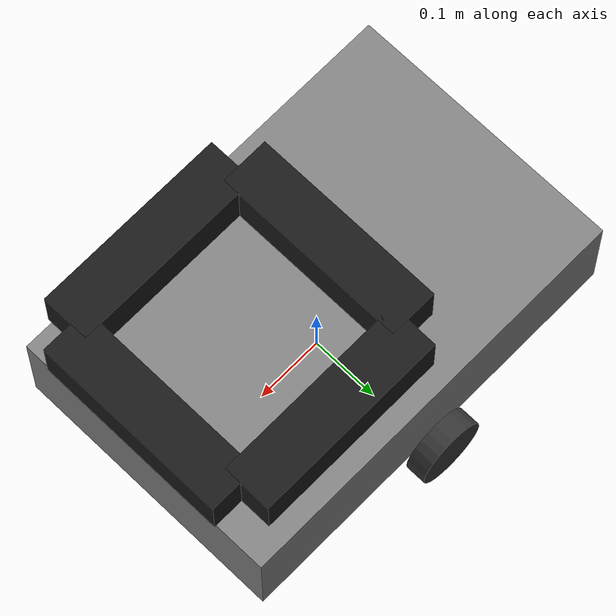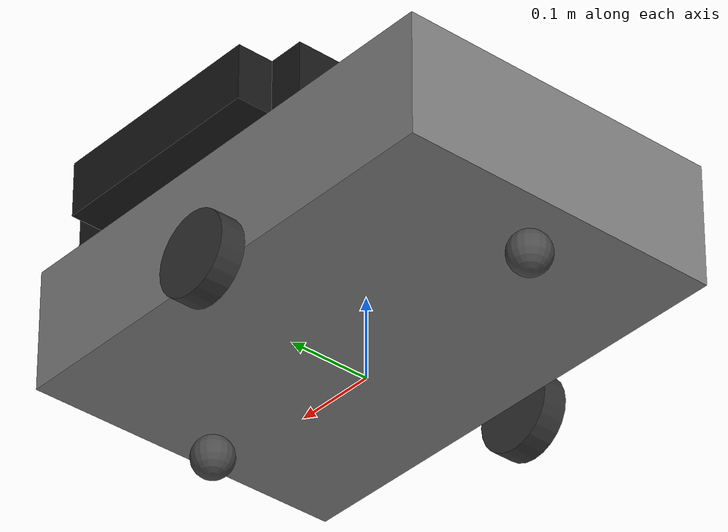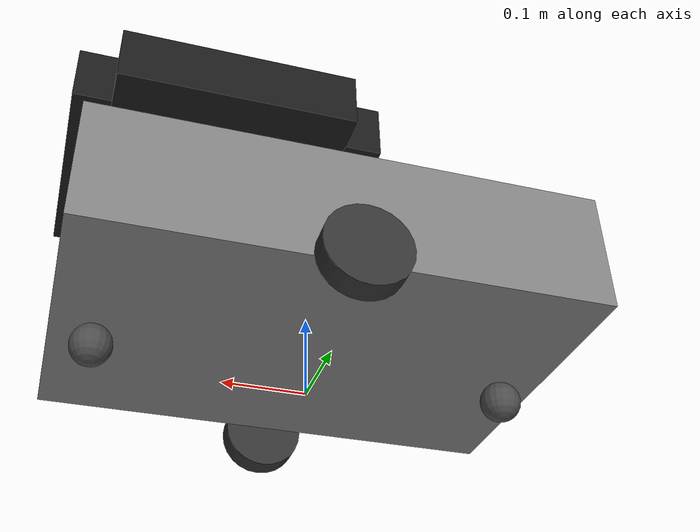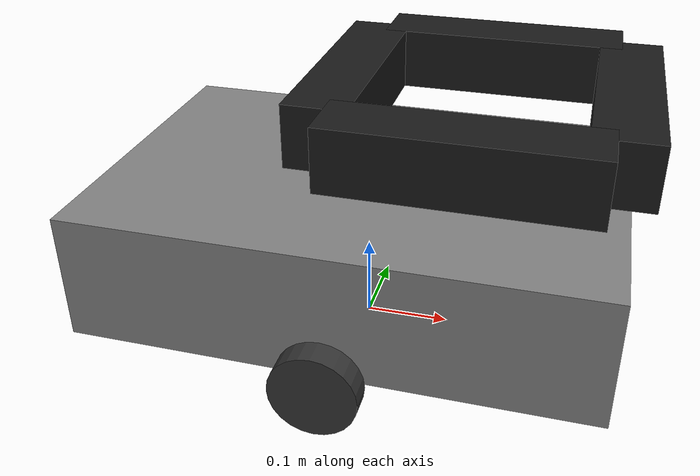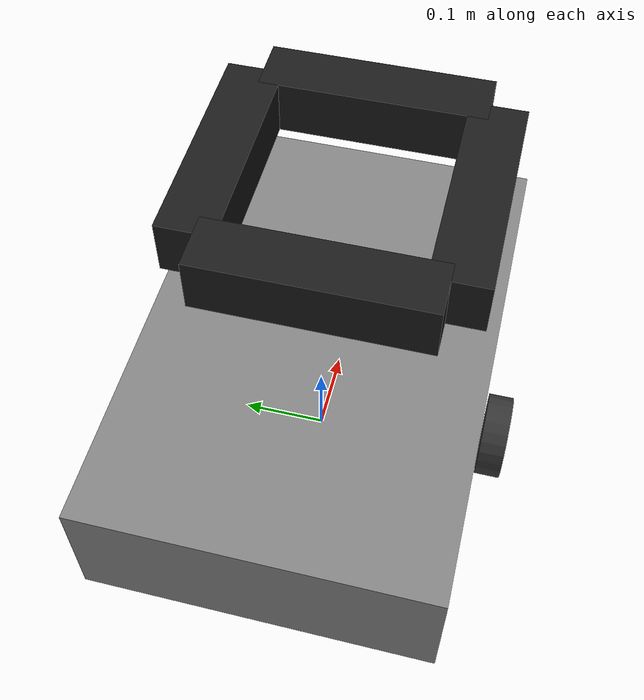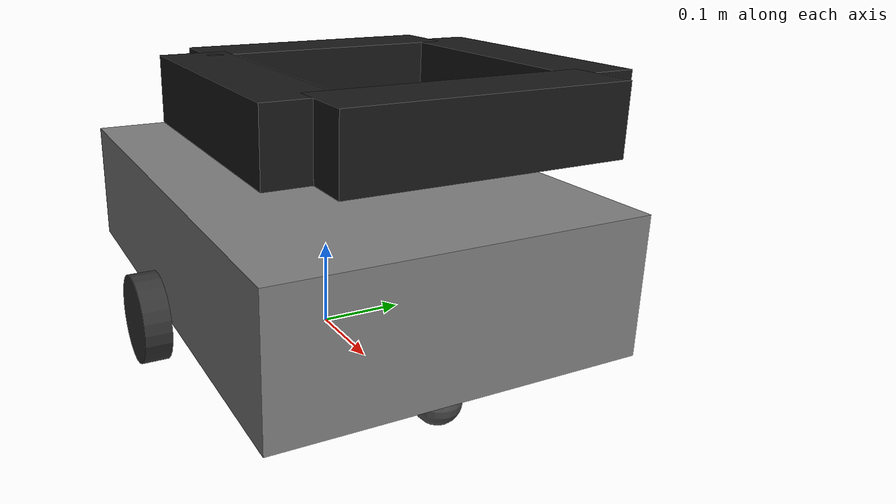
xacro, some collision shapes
<?xml version="1.0"?>
<robot xmlns:xacro="http://www.ros.org/wiki/xacro" name="agv">

  <!-- ===================== PROPERTIES ===================== -->
  <xacro:property name="base_length" value="0.60"/>
  <xacro:property name="base_width"  value="0.40"/>
  <xacro:property name="base_height" value="0.15"/>
  <xacro:property name="base_mass"   value="20.0"/>

  <xacro:property name="wheel_radius"     value="0.05"/>
  <xacro:property name="wheel_width"      value="0.03"/>
  <xacro:property name="wheel_mass"       value="1.0"/>
  <xacro:property name="wheel_separation" value="0.44"/>
  <xacro:property name="wheel_offset_x"   value="0.0"/>

  <xacro:property name="caster_radius" value="0.025"/>
  <xacro:property name="caster_mass"   value="0.3"/>

  <xacro:property name="camera_height" value="0.30"/>

  <!-- Kinect v1 specs -->
  <xacro:property name="kinect_hfov"      value="0.9948"/>
  <xacro:property name="kinect_width"     value="640"/>
  <xacro:property name="kinect_height"    value="480"/>
  <xacro:property name="kinect_near_clip" value="0.8"/>
  <xacro:property name="kinect_far_clip"  value="3.5"/>
  <xacro:property name="kinect_fps"       value="15"/>

  <!-- ==================== MACROS ========================= -->

  <!-- Inertia for a box -->
  <xacro:macro name="box_inertia" params="m x y z">
    <inertial>
      <mass value="${m}"/>
      <inertia ixx="${m*(y*y+z*z)/12}" ixy="0" ixz="0"
               iyy="${m*(x*x+z*z)/12}" iyz="0"
               izz="${m*(x*x+y*y)/12}"/>
    </inertial>
  </xacro:macro>

  <!-- Inertia for a cylinder -->
  <xacro:macro name="cylinder_inertia" params="m r h">
    <inertial>
      <mass value="${m}"/>
      <inertia ixx="${m*(3*r*r+h*h)/12}" ixy="0" ixz="0"
               iyy="${m*(3*r*r+h*h)/12}" iyz="0"
               izz="${m*r*r/2}"/>
    </inertial>
  </xacro:macro>

  <!-- Inertia for a sphere -->
  <xacro:macro name="sphere_inertia" params="m r">
    <inertial>
      <mass value="${m}"/>
      <inertia ixx="${2*m*r*r/5}" ixy="0" ixz="0"
               iyy="${2*m*r*r/5}" iyz="0"
               izz="${2*m*r*r/5}"/>
    </inertial>
  </xacro:macro>

  <!-- Drive wheel macro -->
  <xacro:macro name="drive_wheel" params="name y_offset">
    <link name="${name}_wheel_link">
      <visual>
        <geometry>
          <cylinder radius="${wheel_radius}" length="${wheel_width}"/>
        </geometry>
        <material name="dark_gray">
          <color rgba="0.2 0.2 0.2 1.0"/>
        </material>
      </visual>
      <collision>
        <geometry>
          <cylinder radius="${wheel_radius}" length="${wheel_width}"/>
        </geometry>
      </collision>
      <xacro:cylinder_inertia m="${wheel_mass}" r="${wheel_radius}" h="${wheel_width}"/>
    </link>
    <joint name="${name}_wheel_joint" type="continuous">
      <parent link="base_link"/>
      <child link="${name}_wheel_link"/>
      <origin xyz="${wheel_offset_x} ${y_offset} ${wheel_radius}" rpy="-1.5708 0 0"/>
      <axis xyz="0 0 1"/>
    </joint>
    <gazebo reference="${name}_wheel_link">
      <mu1>1.0</mu1>
      <mu2>1.0</mu2>
    </gazebo>
  </xacro:macro>

  <!-- Caster wheel macro -->
  <xacro:macro name="caster_wheel" params="name x_offset">
    <link name="${name}_caster_link">
      <visual>
        <geometry>
          <sphere radius="${caster_radius}"/>
        </geometry>
        <material name="caster_gray">
          <color rgba="0.3 0.3 0.3 1.0"/>
        </material>
      </visual>
      <collision>
        <geometry>
          <sphere radius="${caster_radius}"/>
        </geometry>
      </collision>
      <xacro:sphere_inertia m="${caster_mass}" r="${caster_radius}"/>
    </link>
    <joint name="${name}_caster_joint" type="fixed">
      <parent link="base_link"/>
      <child link="${name}_caster_link"/>
      <origin xyz="${x_offset} 0 ${caster_radius}" rpy="0 0 0"/>
    </joint>
    <gazebo reference="${name}_caster_link">
      <mu1>0.0</mu1>
      <mu2>0.0</mu2>
    </gazebo>
  </xacro:macro>

  <!-- Kinect depth camera macro -->
  <xacro:macro name="kinect_camera" params="name parent x y yaw">
    <link name="${name}_link">
      <visual>
        <geometry>
          <box size="0.07 0.28 0.07"/>
        </geometry>
        <material name="kinect_black">
          <color rgba="0.1 0.1 0.1 1.0"/>
        </material>
      </visual>
      <collision>
        <geometry>
          <box size="0.07 0.28 0.07"/>
        </geometry>
      </collision>
      <xacro:box_inertia m="0.5" x="0.07" y="0.28" z="0.07"/>
    </link>
    <joint name="${parent}_to_${name}" type="fixed">
      <parent link="${parent}"/>
      <child link="${name}_link"/>
      <origin xyz="${x} ${y} 0" rpy="0 0 ${yaw}"/>
    </joint>

    <!-- Depth frame -->
    <link name="${name}_depth_frame"/>
    <joint name="${name}_depth_joint" type="fixed">
      <parent link="${name}_link"/>
      <child link="${name}_depth_frame"/>
      <origin xyz="0 0 0" rpy="0 0 0"/>
    </joint>

    <!-- Depth optical frame -->
    <link name="${name}_depth_optical_frame"/>
    <joint name="${name}_depth_optical_joint" type="fixed">
      <parent link="${name}_depth_frame"/>
      <child link="${name}_depth_optical_frame"/>
      <origin xyz="0 0 0" rpy="-1.5708 0 -1.5708"/>
    </joint>

    <!-- RGB frame -->
    <link name="${name}_rgb_frame"/>
    <joint name="${name}_rgb_joint" type="fixed">
      <parent link="${name}_link"/>
      <child link="${name}_rgb_frame"/>
      <origin xyz="0 0 0" rpy="0 0 0"/>
    </joint>

    <!-- RGB optical frame -->
    <link name="${name}_rgb_optical_frame"/>
    <joint name="${name}_rgb_optical_joint" type="fixed">
      <parent link="${name}_rgb_frame"/>
      <child link="${name}_rgb_optical_frame"/>
      <origin xyz="0 0 0" rpy="-1.5708 0 -1.5708"/>
    </joint>

    <!-- Gazebo depth camera sensor -->
    <gazebo reference="${name}_link">
      <sensor name="${name}_depth" type="depth_camera">
        <always_on>true</always_on>
        <update_rate>${kinect_fps}</update_rate>
        <topic>/${name}/${name}/depth</topic>
        <gz_frame_id>${name}_depth_optical_frame</gz_frame_id>
        <camera>
          <horizontal_fov>${kinect_hfov}</horizontal_fov>
          <image>
            <width>${kinect_width}</width>
            <height>${kinect_height}</height>
            <format>R_FLOAT32</format>
          </image>
          <clip>
            <near>${kinect_near_clip}</near>
            <far>${kinect_far_clip}</far>
          </clip>
        </camera>
      </sensor>
      <sensor name="${name}_rgb" type="camera">
        <always_on>true</always_on>
        <update_rate>${kinect_fps}</update_rate>
        <topic>/${name}/${name}/rgb</topic>
        <gz_frame_id>${name}_rgb_optical_frame</gz_frame_id>
        <camera>
          <horizontal_fov>${kinect_hfov}</horizontal_fov>
          <image>
            <width>${kinect_width}</width>
            <height>${kinect_height}</height>
            <format>RGB_INT8</format>
          </image>
          <clip>
            <near>0.1</near>
            <far>10.0</far>
          </clip>
        </camera>
      </sensor>
    </gazebo>
  </xacro:macro>

  <!-- ==================== ROBOT BODY ===================== -->

  <!-- Base footprint (ground projection) -->
  <link name="base_footprint"/>

  <!-- Base Link -->
  <link name="base_link">
    <visual>
      <geometry>
        <mesh filename="package://robot_description/meshes/agv.stl" scale="1 1 1"/>
      </geometry>
      <material name="gray">
        <color rgba="0.5 0.5 0.5 1.0"/>
      </material>
      <origin xyz="0.13 0 0" rpy="0 0 0"/>
    </visual>
    <collision>
      <geometry>
        <box size="${base_length} ${base_width} ${base_height}"/>
      </geometry>
      <origin xyz="0 0 ${base_height/2 + wheel_radius}" rpy="0 0 0"/>
    </collision>
    <xacro:box_inertia m="${base_mass}" x="${base_length}" y="${base_width}" z="${base_height}"/>
  </link>

  <joint name="base_footprint_joint" type="fixed">
    <parent link="base_footprint"/>
    <child link="base_link"/>
    <origin xyz="0 0 0" rpy="0 0 0"/>
  </joint>

  <gazebo reference="base_link">
    <mu1>0.2</mu1>
    <mu2>0.2</mu2>
  </gazebo>

  <!-- ==================== WHEELS ========================= -->

  <xacro:drive_wheel name="left"  y_offset="${wheel_separation/2}"/>
  <xacro:drive_wheel name="right" y_offset="${-wheel_separation/2}"/>
  <xacro:caster_wheel name="front" x_offset="${base_length/2 - 0.05}"/>
  <xacro:caster_wheel name="back"  x_offset="${-base_length/2 + 0.05}"/>

  <!-- ==================== CAMERA MOUNT =================== -->

  <link name="camera_link"/>
  <joint name="base_to_camera" type="fixed">
    <parent link="base_link"/>
    <child link="camera_link"/>
    <origin xyz="0.13 0 ${camera_height}" rpy="0 0 0"/>
  </joint>

  <!-- ==================== 4 KINECT CAMERAS =============== -->

  <!-- Kinect 1 - Front (facing 0 deg) -->
  <xacro:kinect_camera name="kinect1" parent="camera_link"
                        x="0.15" y="0" yaw="0"/>

  <!-- Kinect 2 - Back (facing 180 deg) -->
  <xacro:kinect_camera name="kinect2" parent="camera_link"
                        x="-0.15" y="0" yaw="3.14159"/>

  <!-- Kinect 3 - Right (facing -90 deg) -->
  <xacro:kinect_camera name="kinect3" parent="camera_link"
                        x="0" y="-0.15" yaw="-1.5708"/>

  <!-- Kinect 4 - Left (facing +90 deg) -->
  <xacro:kinect_camera name="kinect4" parent="camera_link"
                        x="0" y="0.15" yaw="1.5708"/>

  <!-- ============= GAZEBO SYSTEM PLUGINS ================ -->

  <!-- Differential drive controller -->
  <gazebo>
    <plugin filename="gz-sim-diff-drive-system"
            name="gz::sim::systems::DiffDrive">
      <left_joint>left_wheel_joint</left_joint>
      <right_joint>right_wheel_joint</right_joint>
      <wheel_separation>${wheel_separation}</wheel_separation>
      <wheel_radius>${wheel_radius}</wheel_radius>
      <max_linear_acceleration>1.0</max_linear_acceleration>
      <max_angular_acceleration>2.0</max_angular_acceleration>
      <topic>/cmd_vel</topic>
      <odom_topic>/odom</odom_topic>
      <tf_topic>/tf</tf_topic>
      <frame_id>odom</frame_id>
      <child_frame_id>base_footprint</child_frame_id>
      <odom_publish_frequency>50</odom_publish_frequency>
    </plugin>
  </gazebo>

  <!-- Joint state publisher -->
  <gazebo>
    <plugin filename="gz-sim-joint-state-publisher-system"
            name="gz::sim::systems::JointStatePublisher">
      <joint_name>left_wheel_joint</joint_name>
      <joint_name>right_wheel_joint</joint_name>
      <topic>/joint_states</topic>
      <update_rate>50</update_rate>
    </plugin>
  </gazebo>

</robot>
